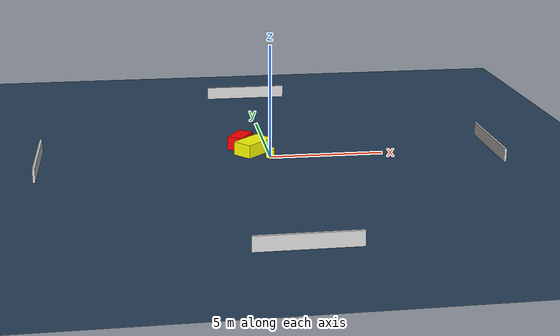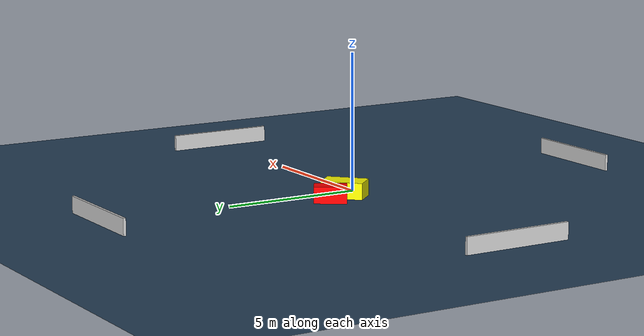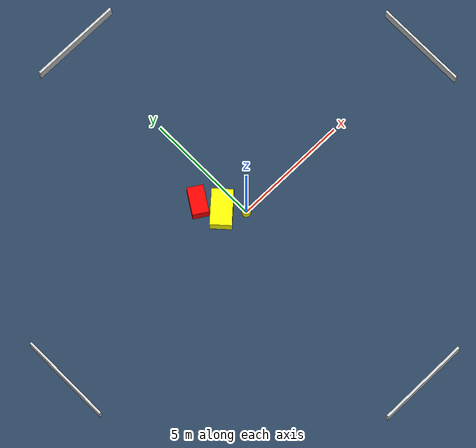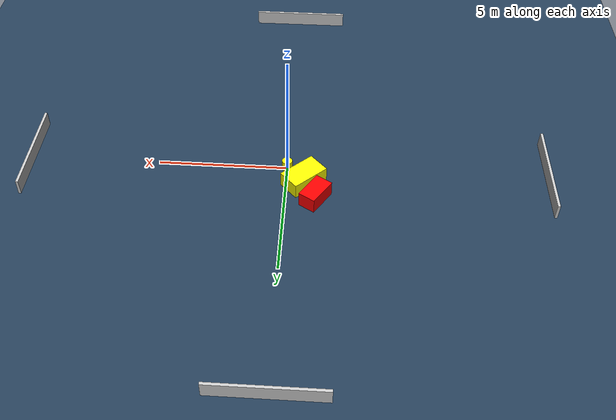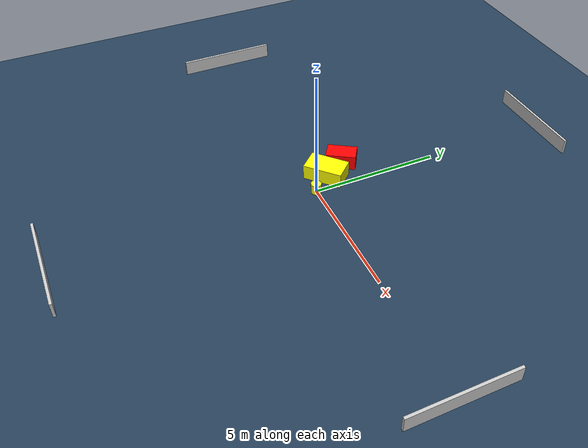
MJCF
<?xml version="1.0" ?>
<mujoco model="generated_environment">
  <option timestep="0.01" integrator="RK4" cone="elliptic"/>
  <default>
    <geom density="1"/>
  </default>
  <asset>
    <texture builtin="gradient" height="3072" name="skybox" rgb1="0.3 0.5 0.7" rgb2="0 0 0" type="skybox" width="512"/>
    <texture builtin="checker" height="300" name="groundplane" rgb1="0.2 0.3 0.4" rgb2="0.1 0.2 0.3" type="2d" width="300"/>
    <material name="groundplane" reflectance="0.2" texrepeat="5 5" texture="groundplane"/>
  </asset>
  <worldbody>
    <light dir="0 0 -1" directional="true" pos="0 0 1.5"/>
    <geom condim="3" friction="0.5 0.005 0.001" material="groundplane" name="floor" pos="0 0 0" size="0 0 0.05" type="plane"/>
    <body name="walls">
      <geom name="wall_1" condim="4" pos="-10.0 0.0 0.3" rgba="0.800000011920929 0.800000011920929 0.800000011920929 1.0" size="0.05 2.0 0.3" type="box"/>
      <geom name="wall_2" condim="4" pos="10.0 0.0 0.3" rgba="0.800000011920929 0.800000011920929 0.800000011920929 1.0" size="0.05 2.0 0.3" type="box"/>
      <geom name="wall_3" condim="4" pos="0.0 -10.0 0.3" rgba="0.800000011920929 0.800000011920929 0.800000011920929 1.0" size="2.0 0.05 0.3" type="box"/>
      <geom name="wall_4" condim="4" pos="0.0 10.0 0.3" rgba="0.800000011920929 0.800000011920929 0.800000011920929 1.0" size="2.0 0.05 0.3" type="box"/>
    </body>
    <body name="robot">
      <joint name="joint_x" type="slide" pos="0 0 0" axis="1 0 0"/>
      <joint name="joint_y" type="slide" pos="0 0 0" axis="0 1 0"/>
      <geom name="robot" type="cylinder" pos="0.0 0.0 0.2" size="0.2 0.2 0.0" mass="5.0" friction="1.0 0.005 0.0001" condim="4" rgba="1.0 1.0 0.0 1.0"/>
    </body>
    <body name="obstacle_1_movable">
      <geom name="obstacle_1_movable" condim="4" pos="-0.668631029872359 0.7338792379013978 0.3" euler="0 0 312.67837205256467" friction="0.0 0.005 0.001" rgba="1.0 1.0 0.0 1.0" size="0.4527174920318935 0.7629357631438496 0.3" type="box" mass="0.1"/>
      <joint type="free"/>
    </body>
    <body name="obstacle_2_static">
      <geom name="obstacle_2_static" condim="4" pos="-1.1455471601646101 1.6155667829392246 0.3" euler="0 0 237.56155546321577" friction="0.0 0.005 0.001" rgba="1.0 0.0 0.0 1.0" size="0.5860855372835033 0.34507163061443136 0.3" type="box"/>
    </body>
  </worldbody>
  <actuator>
    <motor name="actuator_x" joint="joint_x" gear="1" ctrlrange="-1 1"/>
    <motor name="actuator_y" joint="joint_y" gear="1" ctrlrange="-1 1"/>
  </actuator>
</mujoco>
